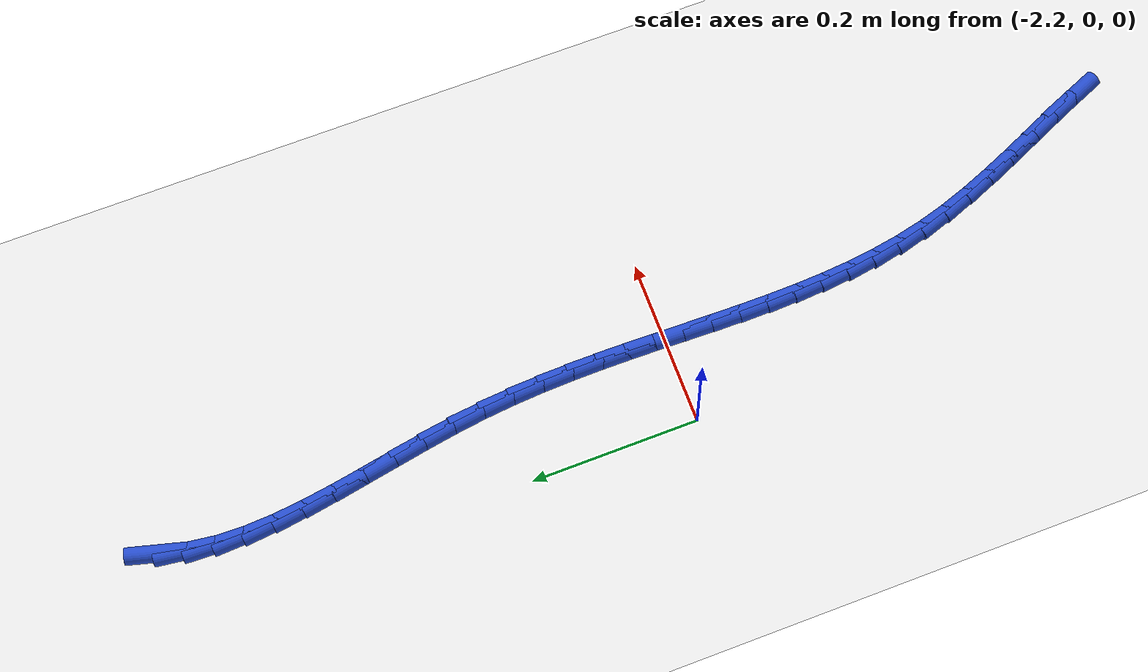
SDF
<sdf version="1.6">
 <world name="default">
  <model name="ground_plane">
   <static>1</static>
   <link name="link">
    <collision name="collision">
     <geometry><plane><normal>0 0 1</normal><size>100 100</size></plane></geometry>
     <surface><friction><ode><mu>100</mu><mu2>50</mu2></ode></friction></surface>
    </collision>
    <visual name="visual">
     <cast_shadows>0</cast_shadows>
     <geometry><plane><normal>0 0 1</normal><size>100 100</size></plane></geometry>
     <material>
      <script><uri>file://media/materials/scripts/gazebo.material</uri><name>Gazebo/WhiteGlow</name></script>
     </material>
    </visual>
   </link>
  </model>
  <model name="line">
   <link name="link_88">
    <pose>-2.1326570176776785 0.615730824335045 0.01 0 1.57 1.3069984576442484</pose>
    <collision name="collision">
     <geometry><cylinder><radius>0.01</radius><length>0.08</length></cylinder></geometry>
    </collision>
    <visual name="visual">
     <material>
      <script><name>Gazebo/Blue</name><uri>file://media/materials/scripts/gazebo.material</uri></script>
     </material>
     <geometry><cylinder><radius>0.01</radius><length>0.08</length></cylinder></geometry>
    </visual>
   </link>
   <link name="link_89">
    <pose>-2.140815783436987 0.5855235007843839 0.01 0 1.57 1.4347007790918065</pose>
    <collision name="collision">
     <geometry><cylinder><radius>0.01</radius><length>0.08</length></cylinder></geometry>
    </collision>
    <visual name="visual">
     <material>
      <script><name>Gazebo/Blue</name><uri>file://media/materials/scripts/gazebo.material</uri></script>
     </material>
     <geometry><cylinder><radius>0.01</radius><length>0.08</length></cylinder></geometry>
    </visual>
   </link>
   <link name="link_90">
    <pose>-2.1451834506694993 0.5536292325690878 0.01 0 1.57 1.5370975865988301</pose>
    <collision name="collision">
     <geometry><cylinder><radius>0.01</radius><length>0.08</length></cylinder></geometry>
    </collision>
    <visual name="visual">
     <material>
      <script><name>Gazebo/Blue</name><uri>file://media/materials/scripts/gazebo.material</uri></script>
     </material>
     <geometry><cylinder><radius>0.01</radius><length>0.08</length></cylinder></geometry>
    </visual>
   </link>
   <link name="link_91">
    <pose>-2.146308304258993 0.5202621762867258 0.01 0 1.57 -1.5254946637548588</pose>
    <collision name="collision">
     <geometry><cylinder><radius>0.01</radius><length>0.08</length></cylinder></geometry>
    </collision>
    <visual name="visual">
     <material>
      <script><name>Gazebo/Blue</name><uri>file://media/materials/scripts/gazebo.material</uri></script>
     </material>
     <geometry><cylinder><radius>0.01</radius><length>0.08</length></cylinder></geometry>
    </visual>
   </link>
   <link name="link_92">
    <pose>-2.1447386290892463 0.48563648853486713 0.01 0 1.57 -1.4669963011891638</pose>
    <collision name="collision">
     <geometry><cylinder><radius>0.01</radius><length>0.08</length></cylinder></geometry>
    </collision>
    <visual name="visual">
     <material>
      <script><name>Gazebo/Blue</name><uri>file://media/materials/scripts/gazebo.material</uri></script>
     </material>
     <geometry><cylinder><radius>0.01</radius><length>0.08</length></cylinder></geometry>
    </visual>
   </link>
   <link name="link_93">
    <pose>-2.141022710044037 0.44996632591108143 0.01 0 1.57 -1.426228192273857</pose>
    <collision name="collision">
     <geometry><cylinder><radius>0.01</radius><length>0.08</length></cylinder></geometry>
    </collision>
    <visual name="visual">
     <material>
      <script><name>Gazebo/Blue</name><uri>file://media/materials/scripts/gazebo.material</uri></script>
     </material>
     <geometry><cylinder><radius>0.01</radius><length>0.08</length></cylinder></geometry>
    </visual>
   </link>
   <link name="link_94">
    <pose>-2.135708832007143 0.4134658450129381 0.01 0 1.57 -1.4009997545533621</pose>
    <collision name="collision">
     <geometry><cylinder><radius>0.01</radius><length>0.08</length></cylinder></geometry>
    </collision>
    <visual name="visual">
     <material>
      <script><name>Gazebo/Blue</name><uri>file://media/materials/scripts/gazebo.material</uri></script>
     </material>
     <geometry><cylinder><radius>0.01</radius><length>0.08</length></cylinder></geometry>
    </visual>
   </link>
   <link name="link_95">
    <pose>-2.129345279862343 0.3763492024380056 0.01 0 1.57 -1.3898241112705128</pose>
    <collision name="collision">
     <geometry><cylinder><radius>0.01</radius><length>0.08</length></cylinder></geometry>
    </collision>
    <visual name="visual">
     <material>
      <script><name>Gazebo/Blue</name><uri>file://media/materials/scripts/gazebo.material</uri></script>
     </material>
     <geometry><cylinder><radius>0.01</radius><length>0.08</length></cylinder></geometry>
    </visual>
   </link>
   <link name="link_96">
    <pose>-2.1224803384934146 0.3388305547838543 0.01 0 1.57 -1.3919103387590828</pose>
    <collision name="collision">
     <geometry><cylinder><radius>0.01</radius><length>0.08</length></cylinder></geometry>
    </collision>
    <visual name="visual">
     <material>
      <script><name>Gazebo/Blue</name><uri>file://media/materials/scripts/gazebo.material</uri></script>
     </material>
     <geometry><cylinder><radius>0.01</radius><length>0.08</length></cylinder></geometry>
    </visual>
   </link>
   <link name="link_97">
    <pose>-2.115662292784137 0.301124058648053 0.01 0 1.57 -1.4071241490765298</pose>
    <collision name="collision">
     <geometry><cylinder><radius>0.01</radius><length>0.08</length></cylinder></geometry>
    </collision>
    <visual name="visual">
     <material>
      <script><name>Gazebo/Blue</name><uri>file://media/materials/scripts/gazebo.material</uri></script>
     </material>
     <geometry><cylinder><radius>0.01</radius><length>0.08</length></cylinder></geometry>
    </visual>
   </link>
   <link name="link_98">
    <pose>-2.1094394276182857 0.26344387062817026 0.01 0 1.57 -1.4359098795991618</pose>
    <collision name="collision">
     <geometry><cylinder><radius>0.01</radius><length>0.08</length></cylinder></geometry>
    </collision>
    <visual name="visual">
     <material>
      <script><name>Gazebo/Blue</name><uri>file://media/materials/scripts/gazebo.material</uri></script>
     </material>
     <geometry><cylinder><radius>0.01</radius><length>0.08</length></cylinder></geometry>
    </visual>
   </link>
   <link name="link_99">
    <pose>-2.1043583975897615 0.22600365822327156 0.01 0 1.57 -1.4732531139511211</pose>
    <collision name="collision">
     <geometry><cylinder><radius>0.01</radius><length>0.08</length></cylinder></geometry>
    </collision>
    <visual name="visual">
     <material>
      <script><name>Gazebo/Blue</name><uri>file://media/materials/scripts/gazebo.material</uri></script>
     </material>
     <geometry><cylinder><radius>0.01</radius><length>0.08</length></cylinder></geometry>
    </visual>
   </link>
   <link name="link_100">
    <pose>-2.100732265235983 0.18894700966187503 0.01 0 1.57 -1.5072684571183488</pose>
    <collision name="collision">
     <geometry><cylinder><radius>0.01</radius><length>0.08</length></cylinder></geometry>
    </collision>
    <visual name="visual">
     <material>
      <script><name>Gazebo/Blue</name><uri>file://media/materials/scripts/gazebo.material</uri></script>
     </material>
     <geometry><cylinder><radius>0.01</radius><length>0.08</length></cylinder></geometry>
    </visual>
   </link>
   <link name="link_101">
    <pose>-2.098399438684263 0.15227511348937803 0.01 0 1.57 -1.5361385081718772</pose>
    <collision name="collision">
     <geometry><cylinder><radius>0.01</radius><length>0.08</length></cylinder></geometry>
    </collision>
    <visual name="visual">
     <material>
      <script><name>Gazebo/Blue</name><uri>file://media/materials/scripts/gazebo.material</uri></script>
     </material>
     <geometry><cylinder><radius>0.01</radius><length>0.08</length></cylinder></geometry>
    </visual>
   </link>
   <link name="link_102">
    <pose>-2.097140743906548 0.11597188319694529 0.01 0 1.57 -1.5595664867333614</pose>
    <collision name="collision">
     <geometry><cylinder><radius>0.01</radius><length>0.08</length></cylinder></geometry>
    </collision>
    <visual name="visual">
     <material>
      <script><name>Gazebo/Blue</name><uri>file://media/materials/scripts/gazebo.material</uri></script>
     </material>
     <geometry><cylinder><radius>0.01</radius><length>0.08</length></cylinder></geometry>
    </visual>
   </link>
   <link name="link_103">
    <pose>-2.096737006874786 0.08002123227574018 0.01 0 1.57 1.564280844885391</pose>
    <collision name="collision">
     <geometry><cylinder><radius>0.01</radius><length>0.08</length></cylinder></geometry>
    </collision>
    <visual name="visual">
     <material>
      <script><name>Gazebo/Blue</name><uri>file://media/materials/scripts/gazebo.material</uri></script>
     </material>
     <geometry><cylinder><radius>0.01</radius><length>0.08</length></cylinder></geometry>
    </visual>
   </link>
   <link name="link_104">
    <pose>-2.096969053560927 0.044407074216926544 0.01 0 1.57 1.5524196078262043</pose>
    <collision name="collision">
     <geometry><cylinder><radius>0.01</radius><length>0.08</length></cylinder></geometry>
    </collision>
    <visual name="visual">
     <material>
      <script><name>Gazebo/Blue</name><uri>file://media/materials/scripts/gazebo.material</uri></script>
     </material>
     <geometry><cylinder><radius>0.01</radius><length>0.08</length></cylinder></geometry>
    </visual>
   </link>
   <link name="link_105">
    <pose>-2.097617709936917 0.00911332251166814 0.01 0 1.57 1.5466196786888613</pose>
    <collision name="collision">
     <geometry><cylinder><radius>0.01</radius><length>0.08</length></cylinder></geometry>
    </collision>
    <visual name="visual">
     <material>
      <script><name>Gazebo/Blue</name><uri>file://media/materials/scripts/gazebo.material</uri></script>
     </material>
     <geometry><cylinder><radius>0.01</radius><length>0.08</length></cylinder></geometry>
    </visual>
   </link>
   <link name="link_106">
    <pose>-2.098463801974704 -0.025876109348871964 0.01 0 1.57 1.5470450245896767</pose>
    <collision name="collision">
     <geometry><cylinder><radius>0.01</radius><length>0.08</length></cylinder></geometry>
    </collision>
    <visual name="visual">
     <material>
      <script><name>Gazebo/Blue</name><uri>file://media/materials/scripts/gazebo.material</uri></script>
     </material>
     <geometry><cylinder><radius>0.01</radius><length>0.08</length></cylinder></geometry>
    </visual>
   </link>
   <link name="link_107">
    <pose>-2.099288155646238 -0.060577307873528365 0.01 0 1.57 1.5538517579357194</pose>
    <collision name="collision">
     <geometry><cylinder><radius>0.01</radius><length>0.08</length></cylinder></geometry>
    </collision>
    <visual name="visual">
     <material>
      <script><name>Gazebo/Blue</name><uri>file://media/materials/scripts/gazebo.material</uri></script>
     </material>
     <geometry><cylinder><radius>0.01</radius><length>0.08</length></cylinder></geometry>
    </visual>
   </link>
   <link name="link_108">
    <pose>-2.0998715969234647 -0.09500635957113807 0.01 0 1.57 1.567186624684531</pose>
    <collision name="collision">
     <geometry><cylinder><radius>0.01</radius><length>0.08</length></cylinder></geometry>
    </collision>
    <visual name="visual">
     <material>
      <script><name>Gazebo/Blue</name><uri>file://media/materials/scripts/gazebo.material</uri></script>
     </material>
     <geometry><cylinder><radius>0.01</radius><length>0.08</length></cylinder></geometry>
    </visual>
   </link>
   <link name="link_109">
    <pose>-2.099994951778334 -0.12917935095053723 0.01 0 1.57 -1.554415353004764</pose>
    <collision name="collision">
     <geometry><cylinder><radius>0.01</radius><length>0.08</length></cylinder></geometry>
    </collision>
    <visual name="visual">
     <material>
      <script><name>Gazebo/Blue</name><uri>file://media/materials/scripts/gazebo.material</uri></script>
     </material>
     <geometry><cylinder><radius>0.01</radius><length>0.08</length></cylinder></geometry>
    </visual>
   </link>
   <link name="link_110">
    <pose>-2.0994390461827925 -0.16311236852056202 0.01 0 1.57 -1.5276792631019458</pose>
    <collision name="collision">
     <geometry><cylinder><radius>0.01</radius><length>0.08</length></cylinder></geometry>
    </collision>
    <visual name="visual">
     <material>
      <script><name>Gazebo/Blue</name><uri>file://media/materials/scripts/gazebo.material</uri></script>
     </material>
     <geometry><cylinder><radius>0.01</radius><length>0.08</length></cylinder></geometry>
    </visual>
   </link>
   <link name="link_111">
    <pose>-2.097984706108789 -0.19682149879004868 0.01 0 1.57 -1.4941750850407223</pose>
    <collision name="collision">
     <geometry><cylinder><radius>0.01</radius><length>0.08</length></cylinder></geometry>
    </collision>
    <visual name="visual">
     <material>
      <script><name>Gazebo/Blue</name><uri>file://media/materials/scripts/gazebo.material</uri></script>
     </material>
     <geometry><cylinder><radius>0.01</radius><length>0.08</length></cylinder></geometry>
    </visual>
   </link>
   <link name="link_112">
    <pose>-2.0954127575282717 -0.23032282826783412 0.01 0 1.57 -1.4539851037485305</pose>
    <collision name="collision">
     <geometry><cylinder><radius>0.01</radius><length>0.08</length></cylinder></geometry>
    </collision>
    <visual name="visual">
     <material>
      <script><name>Gazebo/Blue</name><uri>file://media/materials/scripts/gazebo.material</uri></script>
     </material>
     <geometry><cylinder><radius>0.01</radius><length>0.08</length></cylinder></geometry>
    </visual>
   </link>
   <link name="link_113">
    <pose>-2.0915040264131877 -0.263632443462753 0.01 0 1.57 -1.4073408171187876</pose>
    <collision name="collision">
     <geometry><cylinder><radius>0.01</radius><length>0.08</length></cylinder></geometry>
    </collision>
    <visual name="visual">
     <material>
      <script><name>Gazebo/Blue</name><uri>file://media/materials/scripts/gazebo.material</uri></script>
     </material>
     <geometry><cylinder><radius>0.01</radius><length>0.08</length></cylinder></geometry>
    </visual>
   </link>
   <link name="link_114">
    <pose>-2.0860393387354863 -0.2967664308836423 0.01 0 1.57 -1.3546672269618243</pose>
    <collision name="collision">
     <geometry><cylinder><radius>0.01</radius><length>0.08</length></cylinder></geometry>
    </collision>
    <visual name="visual">
     <material>
      <script><name>Gazebo/Blue</name><uri>file://media/materials/scripts/gazebo.material</uri></script>
     </material>
     <geometry><cylinder><radius>0.01</radius><length>0.08</length></cylinder></geometry>
    </visual>
   </link>
   <link name="link_115">
    <pose>-2.078799520467115 -0.3297408770393381 0.01 0 1.57 -1.2968374617847025</pose>
    <collision name="collision">
     <geometry><cylinder><radius>0.01</radius><length>0.08</length></cylinder></geometry>
    </collision>
    <visual name="visual">
     <material>
      <script><name>Gazebo/Blue</name><uri>file://media/materials/scripts/gazebo.material</uri></script>
     </material>
     <geometry><cylinder><radius>0.01</radius><length>0.08</length></cylinder></geometry>
    </visual>
   </link>
   <link name="link_116">
    <pose>-2.0695731882496333 -0.36257188707160376 0.01 0 1.57 -1.2424703223218252</pose>
    <collision name="collision">
     <geometry><cylinder><radius>0.01</radius><length>0.08</length></cylinder></geometry>
    </collision>
    <visual name="visual">
     <material>
      <script><name>Gazebo/Blue</name><uri>file://media/materials/scripts/gazebo.material</uri></script>
     </material>
     <geometry><cylinder><radius>0.01</radius><length>0.08</length></cylinder></geometry>
    </visual>
   </link>
   <link name="link_117">
    <pose>-2.058432267865252 -0.3952762437120361 0.01 0 1.57 -1.2012243852565523</pose>
    <collision name="collision">
     <geometry><cylinder><radius>0.01</radius><length>0.08</length></cylinder></geometry>
    </collision>
    <visual name="visual">
     <material>
      <script><name>Gazebo/Blue</name><uri>file://media/materials/scripts/gazebo.material</uri></script>
     </material>
     <geometry><cylinder><radius>0.01</radius><length>0.08</length></cylinder></geometry>
    </visual>
   </link>
   <link name="link_118">
    <pose>-2.045805785279043 -0.42787158376793616 0.01 0 1.57 -1.1729451369676096</pose>
    <collision name="collision">
     <geometry><cylinder><radius>0.01</radius><length>0.08</length></cylinder></geometry>
    </collision>
    <visual name="visual">
     <material>
      <script><name>Gazebo/Blue</name><uri>file://media/materials/scripts/gazebo.material</uri></script>
     </material>
     <geometry><cylinder><radius>0.01</radius><length>0.08</length></cylinder></geometry>
    </visual>
   </link>
   <link name="link_119">
    <pose>-2.032145563666659 -0.46037559857064253 0.01 0 1.57 -1.1569931288647861</pose>
    <collision name="collision">
     <geometry><cylinder><radius>0.01</radius><length>0.08</length></cylinder></geometry>
    </collision>
    <visual name="visual">
     <material>
      <script><name>Gazebo/Blue</name><uri>file://media/materials/scripts/gazebo.material</uri></script>
     </material>
     <geometry><cylinder><radius>0.01</radius><length>0.08</length></cylinder></geometry>
    </visual>
   </link>
   <link name="link_120">
    <pose>-2.017903426203752 -0.4928059794514916 0.01 0 1.57 -1.152995325751165</pose>
    <collision name="collision">
     <geometry><cylinder><radius>0.01</radius><length>0.08</length></cylinder></geometry>
    </collision>
    <visual name="visual">
     <material>
      <script><name>Gazebo/Blue</name><uri>file://media/materials/scripts/gazebo.material</uri></script>
     </material>
     <geometry><cylinder><radius>0.01</radius><length>0.08</length></cylinder></geometry>
    </visual>
   </link>
   <link name="link_121">
    <pose>-2.0035311960659725 -0.5251804177418219 0.01 0 1.57 -1.1608955981114826</pose>
    <collision name="collision">
     <geometry><cylinder><radius>0.01</radius><length>0.08</length></cylinder></geometry>
    </collision>
    <visual name="visual">
     <material>
      <script><name>Gazebo/Blue</name><uri>file://media/materials/scripts/gazebo.material</uri></script>
     </material>
     <geometry><cylinder><radius>0.01</radius><length>0.08</length></cylinder></geometry>
    </visual>
   </link>
   <link name="link_122">
    <pose>-1.989480696428974 -0.5575166047729716 0.01 0 1.57 -1.18096976721574</pose>
    <collision name="collision">
     <geometry><cylinder><radius>0.01</radius><length>0.08</length></cylinder></geometry>
    </collision>
    <visual name="visual">
     <material>
      <script><name>Gazebo/Blue</name><uri>file://media/materials/scripts/gazebo.material</uri></script>
     </material>
     <geometry><cylinder><radius>0.01</radius><length>0.08</length></cylinder></geometry>
    </visual>
   </link>
  </model>
 </world>
</sdf>
